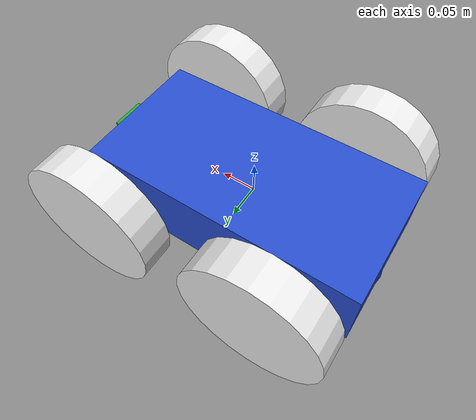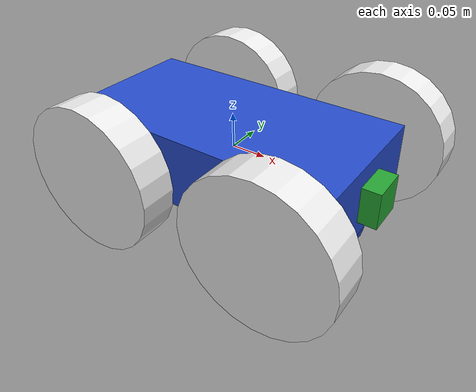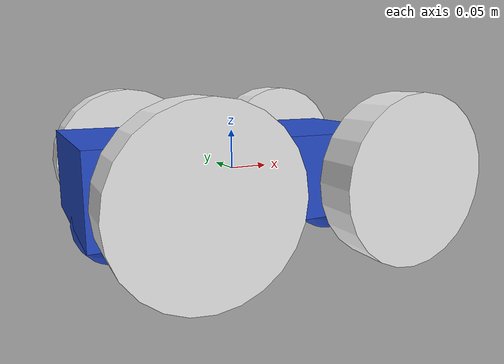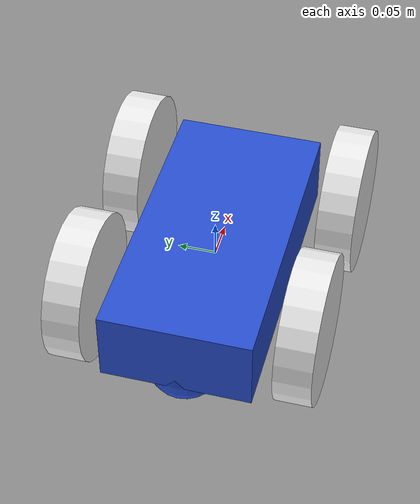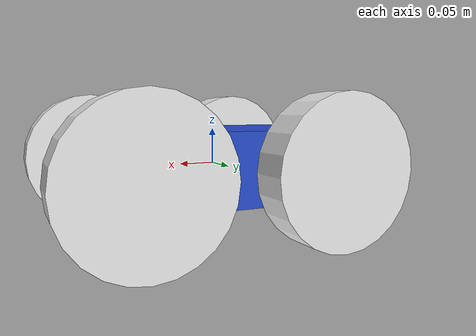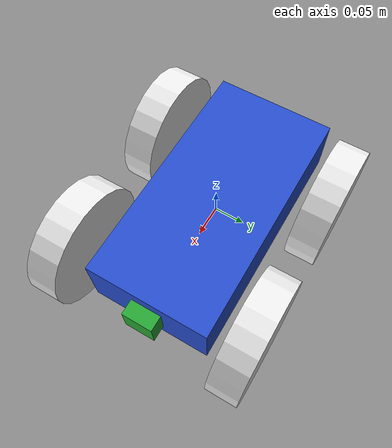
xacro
<?xml version='1.0'?>

<robot name="myrobot" xmlns:xacro="http://www.ros.org/wiki/xacro">

  <xacro:property name="cameraSize" value="0.05"/>
  <xacro:property name="cameraMass" value="0.1"/>

  <xacro:include filename="$(find mybot_description)/urdf/mybot.gazebo" />
  <xacro:include filename="$(find mybot_description)/urdf/materials.xacro" />
  <xacro:include filename="$(find mybot_description)/urdf/macros.xacro" />

  <link name='chassis'>
    <pose>0 0 0.1 0 0 0</pose>

    <inertial>
      <mass value="7.0"/>
      <origin xyz="0.0 0 0.1" rpy=" 0 0 0"/>
      <inertia
          ixx="0.1" ixy="0" ixz="0"
          iyy="0.1" iyz="0"
          izz="0.1"
      />
    </inertial>

    <collision name='collision'>
      <geometry>
        <box size=".4 .2 .1"/>
      </geometry>
    </collision>

    <visual name='chassis_visual'>
      <origin xyz="0 0 0" rpy=" 0 0 0"/>
      <geometry>
        <box size=".4 .2 .1"/>
      </geometry>
    </visual>

<collision name='caster_collision'>
      <origin xyz="-0.15 0 -0.05" rpy=" 0 0 0"/>
      <geometry>
        <sphere radius="0.05"/>
      </geometry>
      <surface>
        <friction>
          <ode>
            <mu>0</mu>
            <mu2>0</mu2>
            <slip1>1.0</slip1>
            <slip2>1.0</slip2>
          </ode>
        </friction>
      </surface>
    </collision>

    <visual name='caster_visual'>
      <origin xyz="-0.15 0 -0.05" rpy=" 0 0 0"/>
      <geometry>
        <sphere radius="0.052"/>
      </geometry>
    </visual>

 <collision name='caster_front_collision'>
      <origin xyz="0.15 0 -0.05" rpy=" 0 0 0"/>
      <geometry>
        <sphere radius="0.05"/>
      </geometry>
      <surface>
        <friction>
          <ode>
            <mu>0</mu>
            <mu2>0</mu2>
            <slip1>1.0</slip1>
            <slip2>1.0</slip2>
          </ode>
        </friction>
      </surface>
    </collision>

    <visual name='caster_front_visual'>
      <origin xyz="0.15 0 -0.05" rpy=" 0 0 0"/>
      <geometry>
        <sphere radius="0.05"/>
      </geometry>
    </visual>

</link>

  <link name="left_back_wheel">
    <!--origin xyz="0.1 0.13 0.1" rpy="0 1.5707 1.5707"/-->
    <collision name="collision">
      <origin xyz="0 0 0" rpy="0 1.5707 1.5707"/>
      <geometry>
        <cylinder radius="0.1" length="0.05"/>
      </geometry>
    </collision>
    <visual name="left_back_wheel_visual">
      <origin xyz="0 0 0" rpy="0 1.5707 1.5707"/>
      <geometry>
        <cylinder radius="0.1" length="0.05"/>
      </geometry>
    </visual>
    <inertial>
      <origin xyz="0 0 0" rpy="0 1.5707 1.5707"/>
      <mass value="5"/>
      <inertia
        ixx=".1" ixy="0.0" ixz="0.0"
        iyy=".1" iyz="0.0"
        izz=".1"/>
    </inertial>
  </link>

  <link name="right_back_wheel">
    <!--origin xyz="0.1 -0.13 0.1" rpy="0 1.5707 1.5707"/-->
    <collision name="collision">
      <origin xyz="0 0 0" rpy="0 1.5707 1.5707"/>
      <geometry>
        <cylinder radius="0.1" length="0.05"/>
      </geometry>
    </collision>
    <visual name="right_back_wheel_visual">
      <origin xyz="0 0 0" rpy="0 1.5707 1.5707"/>
      <geometry>
        <cylinder radius="0.1" length="0.05"/>
      </geometry>
    </visual>
    <inertial>
      <origin xyz="0 0 0" rpy="0 1.5707 1.5707"/>
      <mass value="5"/>
      <inertia
        ixx=".1" ixy="0.0" ixz="0.0"
        iyy=".1" iyz="0.0"
        izz=".1"/>
    </inertial>
  </link>

  <link name="left_front_wheel">
    <!--origin xyz="0.1 0.13 0.1" rpy="0 1.5707 1.5707"/-->
    <collision name="collision">
      <origin xyz="0 0 0" rpy="0 1.5707 1.5707"/>
      <geometry>
        <cylinder radius="0.1" length="0.05"/>
      </geometry>
    </collision>
    <visual name="left_front_wheel_visual">
      <origin xyz="0 0 0" rpy="0 1.5707 1.5707"/>
      <geometry>
        <cylinder radius="0.1" length="0.05"/>
      </geometry>
    </visual>
    <inertial>
      <origin xyz="0 0 0" rpy="0 1.5707 1.5707"/>
      <mass value="5"/>
      <inertia
        ixx=".1" ixy="0.0" ixz="0.0"
        iyy=".1" iyz="0.0"
        izz=".1"/>
    </inertial>
  </link>

  <link name="right_front_wheel">
    <!--origin xyz="0.1 -0.13 0.1" rpy="0 1.5707 1.5707"/-->
    <collision name="collision">
      <origin xyz="0 0 0" rpy="0 1.5707 1.5707"/>
      <geometry>
        <cylinder radius="0.1" length="0.05"/>
      </geometry>
    </collision>
    <visual name="right_front_wheel_visual">
      <origin xyz="0 0 0" rpy="0 1.5707 1.5707"/>
      <geometry>
        <cylinder radius="0.1" length="0.05"/>
      </geometry>
    </visual>
    <inertial>
      <origin xyz="0 0 0" rpy="0 1.5707 1.5707"/>
      <mass value="5"/>
      <inertia
        ixx=".1" ixy="0.0" ixz="0.0"
        iyy=".1" iyz="0.0"
        izz=".1"/>
    </inertial>
  </link>

  <joint type="continuous" name="left_back_wheel_hinge">
    <origin xyz="-0.1 0.15 0" rpy="0 0 0"/>
    <!--origin xyz="0.1 0.13 0" rpy="0 1.5707 1.5707"/-->
    <child link="left_back_wheel"/>
    <parent link="chassis"/>
    <axis xyz="0 1 0" rpy="0 0 0"/>
    <limit effort="10000" velocity="1000"/>
    <joint_properties damping="1.0" friction="1.0"/>
  </joint>

  <joint type="continuous" name="right_back_wheel_hinge">
    <origin xyz="-0.1 -0.15 0" rpy="0 0 0"/>
    <!--origin xyz="0.1 -0.13 0" rpy="0 1.5707 1.5707"/-->
    <child link="right_back_wheel"/>
    <parent link="chassis"/>
    <axis xyz="0 1 0" rpy="0 0 0"/>
    <limit effort="10000" velocity="1000"/>
    <joint_properties damping="1.0" friction="1.0"/>
  </joint>

 <joint type="continuous" name="left_front_wheel_hinge">
    <origin xyz="0.15 0.15 0" rpy="0 0 0"/>
    <!--origin xyz="0.1 0.13 0" rpy="0 1.5707 1.5707"/-->
    <child link="left_front_wheel"/>
    <parent link="chassis"/>
    <axis xyz="0 1 0" rpy="0 0 0"/>
    <limit effort="10000" velocity="1000"/>
    <joint_properties damping="1.0" friction="1.0"/>
  </joint>

  <joint type="continuous" name="right_front_wheel_hinge">
    <origin xyz="0.15 -0.15 0" rpy="0 0 0"/>
    <!--origin xyz="0.1 -0.13 0" rpy="0 1.5707 1.5707"/-->
    <child link="right_front_wheel"/>
    <parent link="chassis"/>
    <axis xyz="0 1 0" rpy="0 0 0"/>
    <limit effort="10000" velocity="1000"/>
    <joint_properties damping="1.0" friction="1.0"/>
  </joint>

  <link name="camera">
    <collision>
      <origin xyz="0 0 0" rpy="0 0 0"/>
      <geometry>
        <box size="${cameraSize} ${cameraSize} ${cameraSize}"/>
      </geometry>
    </collision>

    <visual>
      <origin xyz="0 0 0" rpy="0 0 0"/>
      <geometry>
        <box size="${cameraSize} ${cameraSize} ${cameraSize}"/>
      </geometry>
      <material name="green"/>
    </visual>

    <inertial>
      <mass value="${cameraMass}" />
      <origin xyz="0 0 0" rpy="0 0 0"/>
      <box_inertia m="${cameraMass}" x="${cameraSize}" y="${cameraSize}" z="${cameraSize}" />
      <inertia ixx="1e-6" ixy="0" ixz="0" iyy="1e-6" iyz="0" izz="1e-6" />
    </inertial>
  </link>

  <joint name="camera_joint" type="fixed">
    <axis xyz="0 1 0" />
    <origin xyz=".2 0 0" rpy="0 0 0"/>
    <parent link="chassis"/>
    <child link="camera"/>
  </joint>

<gazebo>
  <plugin name="gazebo_ros_control" filename="libgazebo_ros_control.so">
    <robotNamespace>/</robotNamespace>
  </plugin>
</gazebo>

</robot>

 <joint name="camera_joint" type="fixed">
    <axis xyz="0 1 0" />
    <origin xyz="${camera_link} 0 0.07" rpy="0 0 0"/>
    <parent link="chassis"/>
    <child link="camera_link"/>
  </joint>

    <link name="camera_link">
    <collision>
      <origin xyz="0 0 0" rpy="0 0 0"/>
      <geometry>
    <box size="${camera_link} ${camera_link} ${camera_link}"/>
      </geometry>
    </collision>

    <visual>
      <origin xyz="0 0 0" rpy="0 0 0"/>
      <geometry>
    <box size="${camera_link} ${camera_link} ${camera_link}"/>
      </geometry>
      <material name="red"/>
    </visual>

    <inertial>
      <mass value="1e-5" />
      <origin xyz="0 0 0" rpy="0 0 0"/>
      <inertia ixx="1e-6" ixy="0" ixz="0" iyy="1e-6" iyz="0" izz="1e-6" />
    </inertial>
  </link>

 <gazebo reference="camera_link">
    <sensor type="camera" name="camera1">
      <update_rate>30.0</update_rate>
      <camera name="head">
        <horizontal_fov>1.3962634</horizontal_fov>
        <image>
          <width>800</width>
          <height>800</height>
          <format>R8G8B8</format>
        </image>
        <clip>
          <near>0.02</near>
          <far>300</far>
        </clip>
        <noise>
          <type>gaussian</type>
           Noise is sampled independently per pixel on each frame.
               That pixel's noise value is added to each of its color
               channels, which at that point lie in the range [0,1].
          <mean>0.0</mean>
          <stddev>0.007</stddev>
        </noise>
      </camera>
      <plugin name="camera_controller" filename="libgazebo_ros_camera.so">
        <alwaysOn>true</alwaysOn>
        <updateRate>0.0</updateRate>
        <cameraName>rrbot/camera1</cameraName>
        <imageTopicName>image_raw</imageTopicName>
        <cameraInfoTopicName>camera_info</cameraInfoTopicName>
        <frameName>camera_link</frameName>
        <hackBaseline>0.07</hackBaseline>
        <distortionK1>0.0</distortionK1>
        <distortionK2>0.0</distortionK2>
        <distortionK3>0.0</distortionK3>
        <distortionT1>0.0</distortionT1>
        <distortionT2>0.0</distortionT2>
      </plugin>
    </sensor>
  </gazebo>

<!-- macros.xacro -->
<robot name="mybot" xmlns:xacro="http://www.ros.org/wiki/xacro">
<macro name="cylinder_inertia" params="m r h">
  <inertia  ixx="${m*(3*r*r+h*h)/12}" ixy = "0" ixz = "0"
    iyy="${m*(3*r*r+h*h)/12}" iyz = "0"
    izz="${m*r*r/2}"
  />
</macro>

<macro name="box_inertia" params="m x y z">
  <inertia  ixx="${m*(y*y+z*z)/12}" ixy = "0" ixz = "0"
    iyy="${m*(x*x+z*z)/12}" iyz = "0"
    izz="${m*(x*x+z*z)/12}"
  />
</macro>

<macro name="sphere_inertia" params="m r">
  <inertia  ixx="${2*m*r*r/5}" ixy = "0" ixz = "0"
    iyy="${2*m*r*r/5}" iyz = "0"
    izz="${2*m*r*r/5}"
  />
</macro>

<macro name="wheel" params="lr tY">

<link name="${lr}_wheel">
  <collision>
    <origin xyz="0 0 0" rpy="0 ${PI/2} ${PI/2}" />
    <geometry>
      <cylinder length="${wheelWidth}" radius="${wheelRadius}"/>
    </geometry>
  </collision>

  <visual>
    <origin xyz="0 0 0" rpy="0 ${PI/2} ${PI/2}" />
    <geometry>
      <cylinder length="${wheelWidth}" radius="${wheelRadius}"/>
    </geometry>
    <material name="black"/>
  </visual>

  <inertial>
    <origin xyz="0 0 0" rpy="0 ${PI/2} ${PI/2}" />
    <mass value="${wheelMass}"/>
    <cylinder_inertia m="${wheelMass}" r="${wheelRadius}" h="${wheelWidth}"/>
  </inertial>
</link>

<gazebo reference="${lr}_wheel">
  <mu1 value="1.0"/>
  <mu2 value="1.0"/>
  <kp  value="10000000.0" />
  <kd  value="1.0" />
  <fdir1 value="1 0 0"/>
  <material name="white"/>
</gazebo>

<joint name="${lr}_wheel_hinge" type="continuous">
  <parent link="chassis"/>
  <child link="${lr}_wheel"/>
<origin xyz="${-wheelPos+chassisLength/2} ${tY*wheelWidth/2+tY*chassisWidth/2} ${wheelRadius}" rpy="0 0 0" />
  <axis xyz="0 1 0" rpy="0 0 0" />
  <limit effort="100" velocity="10000"/>
  <joint_properties damping="0.0" friction="10550.0"/>
</joint>

<transmission name="${lr}_trans">
  <type>transmission_interface/SimpleTransmission</type>
  <joint name="${lr}_wheel_hinge"/>
  <actuator name="${lr}_Motor">
    <hardwareInterface>EffortJointInterface</hardwareInterface>
    <mechanicalReduction>10</mechanicalReduction>
  </actuator>
</transmission>

</macro>
</robot>
